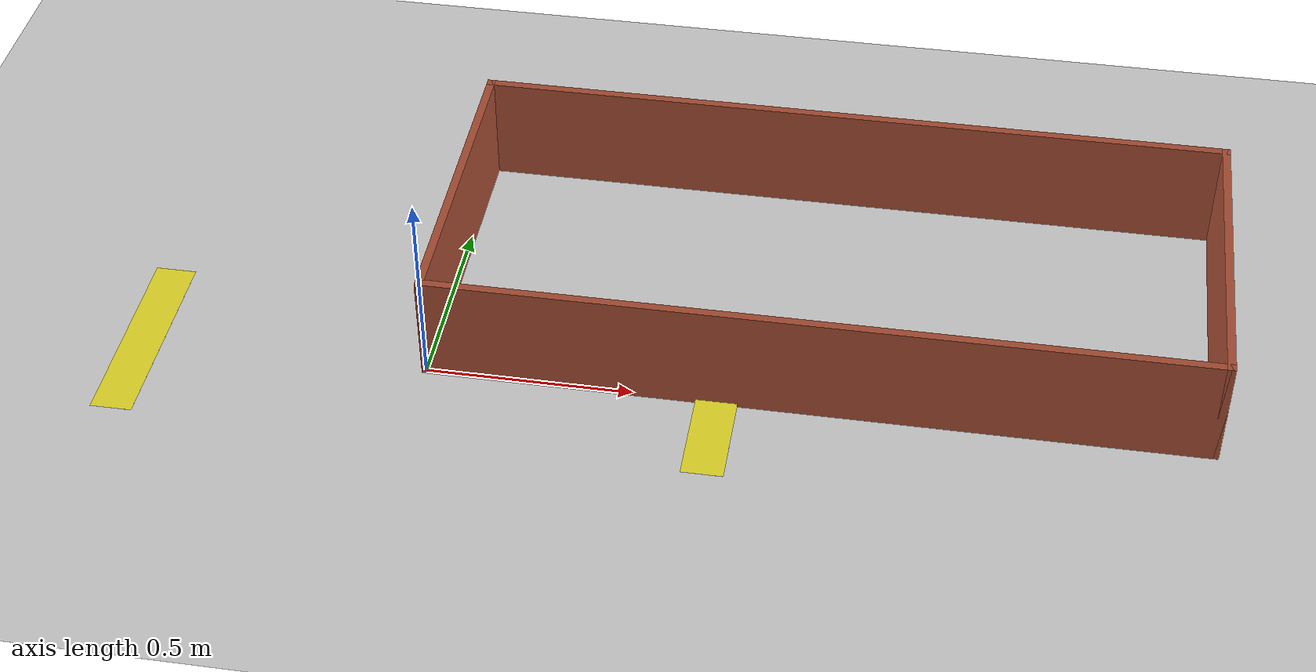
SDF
<sdf version="1.5">
 <world name="default">
  <include><name>sun1</name><uri>model://sun</uri></include>
  <include><uri>model://ground_plane</uri></include>
  <include><name>sandbox</name><uri>model://sandbox</uri></include>
  <include><name>line_3</name><uri>model://yellowline_small</uri><pose>0.7 0 0.01 0 0 1.5708</pose></include>
  <include><name>line_4</name><uri>model://yellowline_small</uri><pose>-0.7 0 0.01 0 0 1.5708</pose></include>
 </world>
</sdf>

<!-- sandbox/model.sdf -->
<sdf version='1.6'>
  <model name='sandbox'>
    <pose frame=''>0.927 0.3935 0 0 -0 0</pose>
    <link name='Wall_12'>
      <collision name='Wall_12_Collision'>
        <geometry>
          <box>
            <size>1.874 0.02 0.279</size>
          </box>
        </geometry>
        <pose frame=''>0 0 0.1395 0 -0 0</pose>
      </collision>
      <visual name='Wall_12_Visual'>
        <pose frame=''>0 0 0.1395 0 -0 0</pose>
        <geometry>
          <box>
            <size>1.874 0.02 0.279</size>
          </box>
        </geometry>
        <material>
          <script>
            <uri>file://media/materials/scripts/gazebo.material</uri>
            <name>Gazebo/Bricks</name>
          </script>
          <ambient>1 1 1 1</ambient>
        </material>
        <meta>
          <layer>0</layer>
        </meta>
      </visual>
      <pose frame=''>0 -0.3935 0 0 -0 0</pose>
    </link>
    <link name='Wall_14'>
      <collision name='Wall_14_Collision'>
        <geometry>
          <box>
            <size>0.807 0.02 0.279</size>
          </box>
        </geometry>
        <pose frame=''>0 0 0.1395 0 -0 0</pose>
      </collision>
      <visual name='Wall_14_Visual'>
        <pose frame=''>0 0 0.1395 0 -0 0</pose>
        <geometry>
          <box>
            <size>0.807 0.02 0.279</size>
          </box>
        </geometry>
        <material>
          <script>
            <uri>file://media/materials/scripts/gazebo.material</uri>
            <name>Gazebo/Bricks</name>
          </script>
          <ambient>1 1 1 1</ambient>
        </material>
        <meta>
          <layer>0</layer>
        </meta>
      </visual>
      <pose frame=''>0.927 0 0 0 -0 1.5708</pose>
    </link>
    <link name='Wall_15'>
      <collision name='Wall_15_Collision'>
        <geometry>
          <box>
            <size>1.874 0.02 0.279</size>
          </box>
        </geometry>
        <pose frame=''>0 0 0.1395 0 -0 0</pose>
      </collision>
      <visual name='Wall_15_Visual'>
        <pose frame=''>0 0 0.1395 0 -0 0</pose>
        <geometry>
          <box>
            <size>1.874 0.02 0.279</size>
          </box>
        </geometry>
        <material>
          <script>
            <uri>file://media/materials/scripts/gazebo.material</uri>
            <name>Gazebo/Bricks</name>
          </script>
          <ambient>1 1 1 1</ambient>
        </material>
        <meta>
          <layer>0</layer>
        </meta>
      </visual>
      <pose frame=''>0 0.3935 0 0 -0 3.14159</pose>
    </link>
    <link name='Wall_16'>
      <collision name='Wall_16_Collision'>
        <geometry>
          <box>
            <size>0.807 0.02 0.279</size>
          </box>
        </geometry>
        <pose frame=''>0 0 0.1395 0 -0 0</pose>
      </collision>
      <visual name='Wall_16_Visual'>
        <pose frame=''>0 0 0.1395 0 -0 0</pose>
        <geometry>
          <box>
            <size>0.807 0.02 0.279</size>
          </box>
        </geometry>
        <material>
          <script>
            <uri>file://media/materials/scripts/gazebo.material</uri>
            <name>Gazebo/Bricks</name>
          </script>
          <ambient>1 1 1 1</ambient>
        </material>
        <meta>
          <layer>0</layer>
        </meta>
      </visual>
      <pose frame=''>-0.927 0 0 0 -0 -1.5708</pose>
    </link>
    <static>1</static>
  </model>
</sdf>

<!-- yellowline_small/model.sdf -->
<sdf version="1.6">
<model name="yellow line small">
  <static>true</static>
    <link name="link_ground">
      <collision name="collision">
        <geometry>
          <plane>
            <normal>0 0 1</normal>
            <size>0.5 0.1</size>
          </plane>
        </geometry>

        <surface>
          <friction>
            <ode>
              <mu>100</mu>
              <mu2>50</mu2>
            </ode>
          </friction>
        </surface>
      </collision>
      <visual name="visual_ground">
        <cast_shadows>false</cast_shadows>
        <geometry>
          <plane>
            <normal>0 0 1</normal>
            <size>0.5 0.1</size>
          </plane>
        </geometry>
       <material>
          <script>
            <uri>file://media/materials/scripts/gazebo.material</uri>
            <name>Gazebo/Yellow</name>
          </script>
        </material>
      </visual>
    </link>
  </model>
</sdf>
